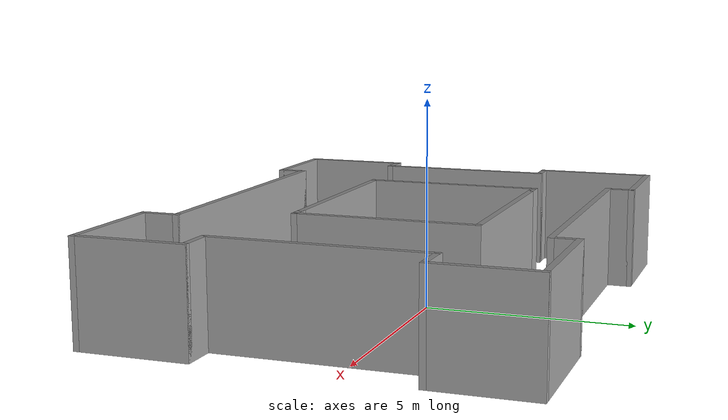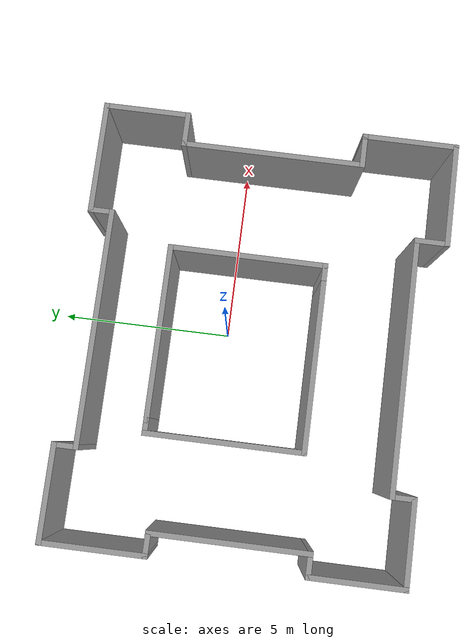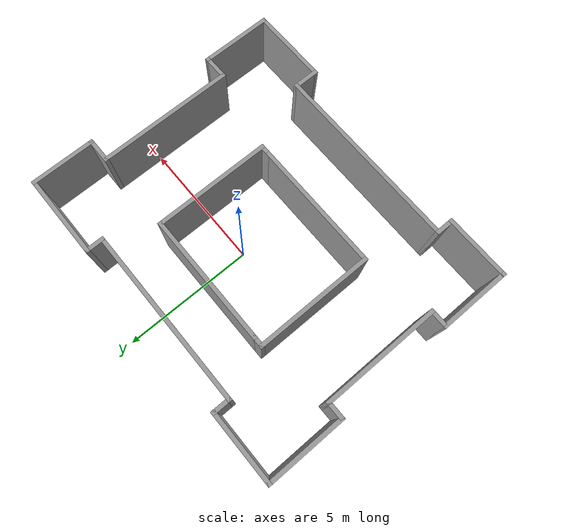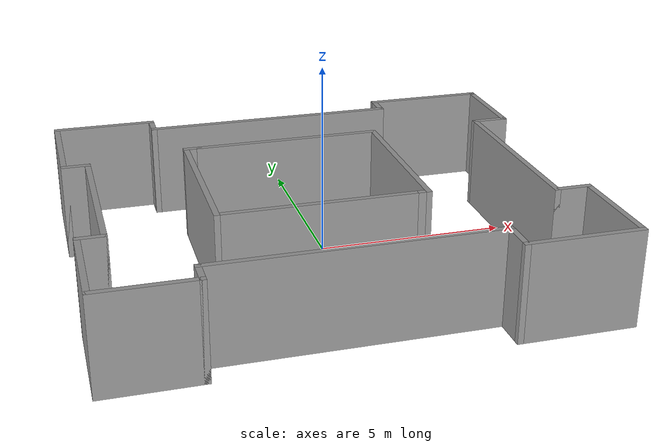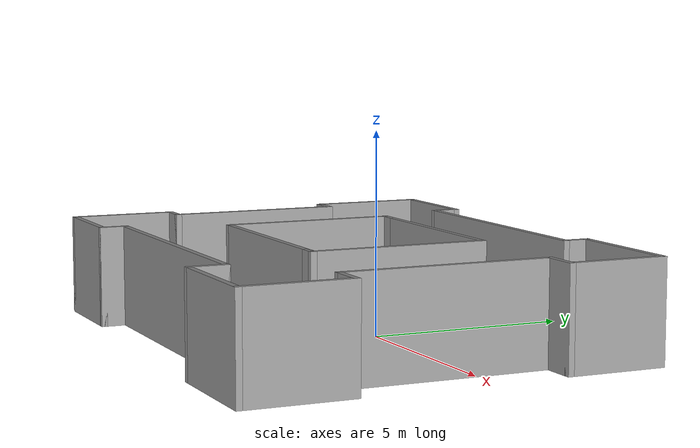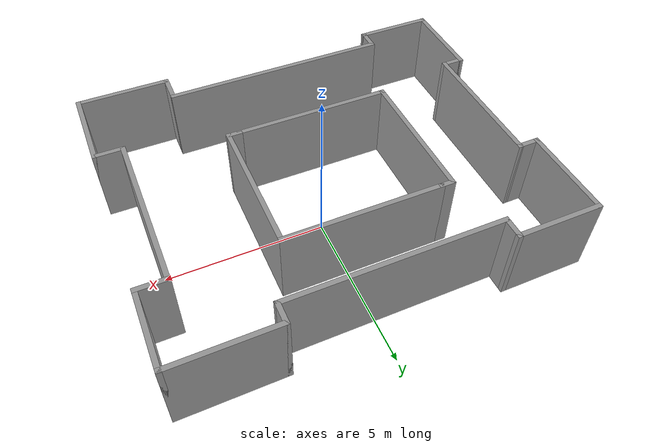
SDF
<?xml version='1.0'?>
<sdf version='1.7'>
  <model name='loop'>
    <pose>-0.296126 -0.822174 0 0 -0 0</pose>
    <link name='Wall_10'>
      <collision name='Wall_10_Collision'>
        <geometry>
          <box>
            <size>2.5 0.15 2.5</size>
          </box>
        </geometry>
        <pose>0 0 1.25 0 -0 0</pose>
      </collision>
      <visual name='Wall_10_Visual'>
        <pose>0 0 1.25 0 -0 0</pose>
        <geometry>
          <box>
            <size>2.5 0.15 2.5</size>
          </box>
        </geometry>
        <material>
          <script>
            <uri>file://media/materials/scripts/gazebo.material</uri>
            <name>Gazebo/Grey</name>
          </script>
          <ambient>1 1 1 1</ambient>
        </material>
        <meta>
          <layer>0</layer>
        </meta>
      </visual>
      <pose>6.15 3.85 0 0 -0 -1.5708</pose>
    </link>
    <link name='Wall_11'>
      <collision name='Wall_11_Collision'>
        <geometry>
          <box>
            <size>1 0.15 2.5</size>
          </box>
        </geometry>
        <pose>0 0 1.25 0 -0 0</pose>
      </collision>
      <visual name='Wall_11_Visual'>
        <pose>0 0 1.25 0 -0 0</pose>
        <geometry>
          <box>
            <size>1 0.15 2.5</size>
          </box>
        </geometry>
        <material>
          <script>
            <uri>file://media/materials/scripts/gazebo.material</uri>
            <name>Gazebo/Grey</name>
          </script>
          <ambient>1 1 1 1</ambient>
        </material>
        <meta>
          <layer>0</layer>
        </meta>
      </visual>
      <pose>5.725 2.675 0 0 -0 3.14159</pose>
    </link>
    <link name='Wall_12'>
      <collision name='Wall_12_Collision'>
        <geometry>
          <box>
            <size>5.25 0.15 2.5</size>
          </box>
        </geometry>
        <pose>0 0 1.25 0 -0 0</pose>
      </collision>
      <visual name='Wall_12_Visual'>
        <pose>0 0 1.25 0 -0 0</pose>
        <geometry>
          <box>
            <size>5.25 0.15 2.5</size>
          </box>
        </geometry>
        <material>
          <script>
            <uri>file://media/materials/scripts/gazebo.material</uri>
            <name>Gazebo/Grey</name>
          </script>
          <ambient>1 1 1 1</ambient>
        </material>
        <meta>
          <layer>0</layer>
        </meta>
      </visual>
      <pose>5.3 0.125 0 0 -0 -1.5708</pose>
    </link>
    <link name='Wall_13'>
      <collision name='Wall_13_Collision'>
        <geometry>
          <box>
            <size>1 0.15 2.5</size>
          </box>
        </geometry>
        <pose>0 0 1.25 0 -0 0</pose>
      </collision>
      <visual name='Wall_13_Visual'>
        <pose>0 0 1.25 0 -0 0</pose>
        <geometry>
          <box>
            <size>1 0.15 2.5</size>
          </box>
        </geometry>
        <material>
          <script>
            <uri>file://media/materials/scripts/gazebo.material</uri>
            <name>Gazebo/Grey</name>
          </script>
          <ambient>1 1 1 1</ambient>
        </material>
        <meta>
          <layer>0</layer>
        </meta>
      </visual>
      <pose>5.725 -2.425 0 0 -0 0</pose>
    </link>
    <link name='Wall_14'>
      <collision name='Wall_14_Collision'>
        <geometry>
          <box>
            <size>2.75 0.15 2.5</size>
          </box>
        </geometry>
        <pose>0 0 1.25 0 -0 0</pose>
      </collision>
      <visual name='Wall_14_Visual'>
        <pose>0 0 1.25 0 -0 0</pose>
        <geometry>
          <box>
            <size>2.75 0.15 2.5</size>
          </box>
        </geometry>
        <material>
          <script>
            <uri>file://media/materials/scripts/gazebo.material</uri>
            <name>Gazebo/Grey</name>
          </script>
          <ambient>1 1 1 1</ambient>
        </material>
        <meta>
          <layer>0</layer>
        </meta>
      </visual>
      <pose>6.15 -3.725 0 0 -0 -1.5708</pose>
    </link>
    <link name='Wall_15'>
      <collision name='Wall_15_Collision'>
        <geometry>
          <box>
            <size>3 0.15 2.5</size>
          </box>
        </geometry>
        <pose>0 0 1.25 0 -0 0</pose>
      </collision>
      <visual name='Wall_15_Visual'>
        <pose>0 0 1.25 0 -0 0</pose>
        <geometry>
          <box>
            <size>3 0.15 2.5</size>
          </box>
        </geometry>
        <material>
          <script>
            <uri>file://media/materials/scripts/gazebo.material</uri>
            <name>Gazebo/Grey</name>
          </script>
          <ambient>1 1 1 1</ambient>
        </material>
        <meta>
          <layer>0</layer>
        </meta>
      </visual>
      <pose>4.725 -5.025 0 0 -0 3.14159</pose>
    </link>
    <link name='Wall_16'>
      <collision name='Wall_16_Collision'>
        <geometry>
          <box>
            <size>1 0.15 2.5</size>
          </box>
        </geometry>
        <pose>0 0 1.25 0 -0 0</pose>
      </collision>
      <visual name='Wall_16_Visual'>
        <pose>0 0 1.25 0 -0 0</pose>
        <geometry>
          <box>
            <size>1 0.15 2.5</size>
          </box>
        </geometry>
        <material>
          <script>
            <uri>file://media/materials/scripts/gazebo.material</uri>
            <name>Gazebo/Grey</name>
          </script>
          <ambient>1 1 1 1</ambient>
        </material>
        <meta>
          <layer>0</layer>
        </meta>
      </visual>
      <pose>3.3 -4.6 0 0 -0 1.5708</pose>
    </link>
    <link name='Wall_18'>
      <collision name='Wall_18_Collision'>
        <geometry>
          <box>
            <size>0.75 0.15 2.5</size>
          </box>
        </geometry>
        <pose>0 0 1.25 0 -0 0</pose>
      </collision>
      <visual name='Wall_18_Visual'>
        <pose>0 0 1.25 0 -0 0</pose>
        <geometry>
          <box>
            <size>0.75 0.15 2.5</size>
          </box>
        </geometry>
        <material>
          <script>
            <uri>file://media/materials/scripts/gazebo.material</uri>
            <name>Gazebo/Grey</name>
          </script>
          <ambient>1 1 1 1</ambient>
        </material>
        <meta>
          <layer>0</layer>
        </meta>
      </visual>
      <pose>3.05 4.725 0 0 -0 -1.5708</pose>
    </link>
    <link name='Wall_19'>
      <collision name='Wall_19_Collision'>
        <geometry>
          <box>
            <size>6.75 0.15 2.5</size>
          </box>
        </geometry>
        <pose>0 0 1.25 0 -0 0</pose>
      </collision>
      <visual name='Wall_19_Visual'>
        <pose>0 0 1.25 0 -0 0</pose>
        <geometry>
          <box>
            <size>6.75 0.15 2.5</size>
          </box>
        </geometry>
        <material>
          <script>
            <uri>file://media/materials/scripts/gazebo.material</uri>
            <name>Gazebo/Grey</name>
          </script>
          <ambient>1 1 1 1</ambient>
        </material>
        <meta>
          <layer>0</layer>
        </meta>
      </visual>
      <pose>-0.25 4.425 0 0 -0 3.14159</pose>
    </link>
    <link name='Wall_20'>
      <collision name='Wall_20_Collision'>
        <geometry>
          <box>
            <size>0.75 0.15 2.5</size>
          </box>
        </geometry>
        <pose>0 0 1.25 0 -0 0</pose>
      </collision>
      <visual name='Wall_20_Visual'>
        <pose>0 0 1.25 0 -0 0</pose>
        <geometry>
          <box>
            <size>0.75 0.15 2.5</size>
          </box>
        </geometry>
        <material>
          <script>
            <uri>file://media/materials/scripts/gazebo.material</uri>
            <name>Gazebo/Grey</name>
          </script>
          <ambient>1 1 1 1</ambient>
        </material>
        <meta>
          <layer>0</layer>
        </meta>
      </visual>
      <pose>-3.55 4.725 0 0 -0 1.5708</pose>
    </link>
    <link name='Wall_21'>
      <collision name='Wall_21_Collision'>
        <geometry>
          <box>
            <size>2.75 0.15 2.5</size>
          </box>
        </geometry>
        <pose>0 0 1.25 0 -0 0</pose>
      </collision>
      <visual name='Wall_21_Visual'>
        <pose>0 0 1.25 0 -0 0</pose>
        <geometry>
          <box>
            <size>2.75 0.15 2.5</size>
          </box>
        </geometry>
        <material>
          <script>
            <uri>file://media/materials/scripts/gazebo.material</uri>
            <name>Gazebo/Grey</name>
          </script>
          <ambient>1 1 1 1</ambient>
        </material>
        <meta>
          <layer>0</layer>
        </meta>
      </visual>
      <pose>-4.85 5.025 0 0 -0 3.14159</pose>
    </link>
    <link name='Wall_22'>
      <collision name='Wall_22_Collision'>
        <geometry>
          <box>
            <size>3 0.15 2.5</size>
          </box>
        </geometry>
        <pose>0 0 1.25 0 -0 0</pose>
      </collision>
      <visual name='Wall_22_Visual'>
        <pose>0 0 1.25 0 -0 0</pose>
        <geometry>
          <box>
            <size>3 0.15 2.5</size>
          </box>
        </geometry>
        <material>
          <script>
            <uri>file://media/materials/scripts/gazebo.material</uri>
            <name>Gazebo/Grey</name>
          </script>
          <ambient>1 1 1 1</ambient>
        </material>
        <meta>
          <layer>0</layer>
        </meta>
      </visual>
      <pose>-6.15 3.6 0 0 -0 -1.5708</pose>
    </link>
    <link name='Wall_23'>
      <collision name='Wall_23_Collision'>
        <geometry>
          <box>
            <size>0.75 0.15 2.5</size>
          </box>
        </geometry>
        <pose>0 0 1.25 0 -0 0</pose>
      </collision>
      <visual name='Wall_23_Visual'>
        <pose>0 0 1.25 0 -0 0</pose>
        <geometry>
          <box>
            <size>0.75 0.15 2.5</size>
          </box>
        </geometry>
        <material>
          <script>
            <uri>file://media/materials/scripts/gazebo.material</uri>
            <name>Gazebo/Grey</name>
          </script>
          <ambient>1 1 1 1</ambient>
        </material>
        <meta>
          <layer>0</layer>
        </meta>
      </visual>
      <pose>-5.85 2.175 0 0 -0 0</pose>
    </link>
    <link name='Wall_24'>
      <collision name='Wall_24_Collision'>
        <geometry>
          <box>
            <size>4.5 0.15 2.5</size>
          </box>
        </geometry>
        <pose>0 0 1.25 0 -0 0</pose>
      </collision>
      <visual name='Wall_24_Visual'>
        <pose>0 0 1.25 0 -0 0</pose>
        <geometry>
          <box>
            <size>4.5 0.15 2.5</size>
          </box>
        </geometry>
        <material>
          <script>
            <uri>file://media/materials/scripts/gazebo.material</uri>
            <name>Gazebo/Grey</name>
          </script>
          <ambient>1 1 1 1</ambient>
        </material>
        <meta>
          <layer>0</layer>
        </meta>
      </visual>
      <pose>-5.55 -0 0 0 -0 -1.5708</pose>
    </link>
    <link name='Wall_25'>
      <collision name='Wall_25_Collision'>
        <geometry>
          <box>
            <size>0.75 0.15 2.5</size>
          </box>
        </geometry>
        <pose>0 0 1.25 0 -0 0</pose>
      </collision>
      <visual name='Wall_25_Visual'>
        <pose>0 0 1.25 0 -0 0</pose>
        <geometry>
          <box>
            <size>0.75 0.15 2.5</size>
          </box>
        </geometry>
        <material>
          <script>
            <uri>file://media/materials/scripts/gazebo.material</uri>
            <name>Gazebo/Grey</name>
          </script>
          <ambient>1 1 1 1</ambient>
        </material>
        <meta>
          <layer>0</layer>
        </meta>
      </visual>
      <pose>-5.85 -2.175 0 0 -0 3.14159</pose>
    </link>
    <link name='Wall_26'>
      <collision name='Wall_26_Collision'>
        <geometry>
          <box>
            <size>2.75 0.15 2.5</size>
          </box>
        </geometry>
        <pose>0 0 1.25 0 -0 0</pose>
      </collision>
      <visual name='Wall_26_Visual'>
        <pose>0 0 1.25 0 -0 0</pose>
        <geometry>
          <box>
            <size>2.75 0.15 2.5</size>
          </box>
        </geometry>
        <material>
          <script>
            <uri>file://media/materials/scripts/gazebo.material</uri>
            <name>Gazebo/Grey</name>
          </script>
          <ambient>1 1 1 1</ambient>
        </material>
        <meta>
          <layer>0</layer>
        </meta>
      </visual>
      <pose>-6.15 -3.475 0 0 -0 -1.5708</pose>
    </link>
    <link name='Wall_27'>
      <collision name='Wall_27_Collision'>
        <geometry>
          <box>
            <size>2.5 0.15 2.5</size>
          </box>
        </geometry>
        <pose>0 0 1.25 0 -0 0</pose>
      </collision>
      <visual name='Wall_27_Visual'>
        <pose>0 0 1.25 0 -0 0</pose>
        <geometry>
          <box>
            <size>2.5 0.15 2.5</size>
          </box>
        </geometry>
        <material>
          <script>
            <uri>file://media/materials/scripts/gazebo.material</uri>
            <name>Gazebo/Grey</name>
          </script>
          <ambient>1 1 1 1</ambient>
        </material>
        <meta>
          <layer>0</layer>
        </meta>
      </visual>
      <pose>-4.975 -4.775 0 0 -0 0</pose>
    </link>
    <link name='Wall_28'>
      <collision name='Wall_28_Collision'>
        <geometry>
          <box>
            <size>0.75 0.15 2.5</size>
          </box>
        </geometry>
        <pose>0 0 1.25 0 -0 0</pose>
      </collision>
      <visual name='Wall_28_Visual'>
        <pose>0 0 1.25 0 -0 0</pose>
        <geometry>
          <box>
            <size>0.75 0.15 2.5</size>
          </box>
        </geometry>
        <material>
          <script>
            <uri>file://media/materials/scripts/gazebo.material</uri>
            <name>Gazebo/Grey</name>
          </script>
          <ambient>1 1 1 1</ambient>
        </material>
        <meta>
          <layer>0</layer>
        </meta>
      </visual>
      <pose>-3.8 -4.475 0 0 -0 1.5708</pose>
    </link>
    <link name='Wall_29'>
      <collision name='Wall_29_Collision'>
        <geometry>
          <box>
            <size>7.25 0.15 2.5</size>
          </box>
        </geometry>
        <pose>0 0 1.25 0 -0 0</pose>
      </collision>
      <visual name='Wall_29_Visual'>
        <pose>0 0 1.25 0 -0 0</pose>
        <geometry>
          <box>
            <size>7.25 0.15 2.5</size>
          </box>
        </geometry>
        <material>
          <script>
            <uri>file://media/materials/scripts/gazebo.material</uri>
            <name>Gazebo/Grey</name>
          </script>
          <ambient>1 1 1 1</ambient>
        </material>
        <meta>
          <layer>0</layer>
        </meta>
      </visual>
      <pose>-0.25 -4.175 0 0 -0 0</pose>
    </link>
    <link name='Wall_35'>
      <collision name='Wall_35_Collision'>
        <geometry>
          <box>
            <size>5 0.15 2.5</size>
          </box>
        </geometry>
        <pose>0 0 1.25 0 -0 0</pose>
      </collision>
      <visual name='Wall_35_Visual'>
        <pose>0 0 1.25 0 -0 0</pose>
        <geometry>
          <box>
            <size>5 0.15 2.5</size>
          </box>
        </geometry>
        <material>
          <script>
            <uri>file://media/materials/scripts/gazebo.material</uri>
            <name>Gazebo/Grey</name>
          </script>
          <ambient>1 1 1 1</ambient>
        </material>
        <meta>
          <layer>0</layer>
        </meta>
      </visual>
      <pose>-0.168868 2.64255 0 0 -0 0</pose>
    </link>
    <link name='Wall_37'>
      <collision name='Wall_37_Collision'>
        <geometry>
          <box>
            <size>0.5 0.15 2.5</size>
          </box>
        </geometry>
        <pose>0 0 1.25 0 -0 0</pose>
      </collision>
      <visual name='Wall_37_Visual'>
        <pose>0 0 1.25 0 -0 0</pose>
        <geometry>
          <box>
            <size>0.5 0.15 2.5</size>
          </box>
        </geometry>
        <material>
          <script>
            <uri>file://media/materials/scripts/gazebo.material</uri>
            <name>Gazebo/Grey</name>
          </script>
          <ambient>1 1 1 1</ambient>
        </material>
        <meta>
          <layer>0</layer>
        </meta>
      </visual>
      <pose>-2.76887 2.64255 0 0 -0 3.14159</pose>
    </link>
    <link name='Wall_38'>
      <collision name='Wall_38_Collision'>
        <geometry>
          <box>
            <size>4.5 0.15 2.5</size>
          </box>
        </geometry>
        <pose>0 0 1.25 0 -0 0</pose>
      </collision>
      <visual name='Wall_38_Visual'>
        <pose>0 0 1.25 0 -0 0</pose>
        <geometry>
          <box>
            <size>4.5 0.15 2.5</size>
          </box>
        </geometry>
        <material>
          <script>
            <uri>file://media/materials/scripts/gazebo.material</uri>
            <name>Gazebo/Grey</name>
          </script>
          <ambient>1 1 1 1</ambient>
        </material>
        <meta>
          <layer>0</layer>
        </meta>
      </visual>
      <pose>-2.94387 0.467547 0 0 -0 -1.5708</pose>
    </link>
    <link name='Wall_39'>
      <collision name='Wall_39_Collision'>
        <geometry>
          <box>
            <size>5 0.15 2.5</size>
          </box>
        </geometry>
        <pose>0 0 1.25 0 -0 0</pose>
      </collision>
      <visual name='Wall_39_Visual'>
        <pose>0 0 1.25 0 -0 0</pose>
        <geometry>
          <box>
            <size>5 0.15 2.5</size>
          </box>
        </geometry>
        <material>
          <script>
            <uri>file://media/materials/scripts/gazebo.material</uri>
            <name>Gazebo/Grey</name>
          </script>
          <ambient>1 1 1 1</ambient>
        </material>
        <meta>
          <layer>0</layer>
        </meta>
      </visual>
      <pose>-0.518868 -1.70745 0 0 -0 0</pose>
    </link>
    <link name='Wall_42'>
      <collision name='Wall_42_Collision'>
        <geometry>
          <box>
            <size>4.5 0.15 2.5</size>
          </box>
        </geometry>
        <pose>0 0 1.25 0 -0 0</pose>
      </collision>
      <visual name='Wall_42_Visual'>
        <pose>0 0 1.25 0 -0 0</pose>
        <geometry>
          <box>
            <size>4.5 0.15 2.5</size>
          </box>
        </geometry>
        <material>
          <script>
            <uri>file://media/materials/scripts/gazebo.material</uri>
            <name>Gazebo/Grey</name>
          </script>
          <ambient>1 1 1 1</ambient>
        </material>
        <meta>
          <layer>0</layer>
        </meta>
      </visual>
      <pose>2.25613 0.467547 0 0 -0 -1.5708</pose>
    </link>
    <link name='Wall_43'>
      <collision name='Wall_43_Collision'>
        <geometry>
          <box>
            <size>0.5 0.15 2.5</size>
          </box>
        </geometry>
        <pose>0 0 1.25 0 -0 0</pose>
      </collision>
      <visual name='Wall_43_Visual'>
        <pose>0 0 1.25 0 -0 0</pose>
        <geometry>
          <box>
            <size>0.5 0.15 2.5</size>
          </box>
        </geometry>
        <material>
          <script>
            <uri>file://media/materials/scripts/gazebo.material</uri>
            <name>Gazebo/Grey</name>
          </script>
          <ambient>1 1 1 1</ambient>
        </material>
        <meta>
          <layer>0</layer>
        </meta>
      </visual>
      <pose>2.08113 -1.70745 0 0 -0 3.14159</pose>
    </link>
    <link name='Wall_9'>
      <collision name='Wall_9_Collision'>
        <geometry>
          <box>
            <size>3.25 0.15 2.5</size>
          </box>
        </geometry>
        <pose>0 0 1.25 0 -0 0</pose>
      </collision>
      <visual name='Wall_9_Visual'>
        <pose>0 0 1.25 0 -0 0</pose>
        <geometry>
          <box>
            <size>3.25 0.15 2.5</size>
          </box>
        </geometry>
        <material>
          <script>
            <uri>file://media/materials/scripts/gazebo.material</uri>
            <name>Gazebo/Grey</name>
          </script>
          <ambient>1 1 1 1</ambient>
        </material>
        <meta>
          <layer>0</layer>
        </meta>
      </visual>
      <pose>4.6 5.025 0 0 -0 0</pose>
    </link>
    <static>1</static>
  </model>
</sdf>
